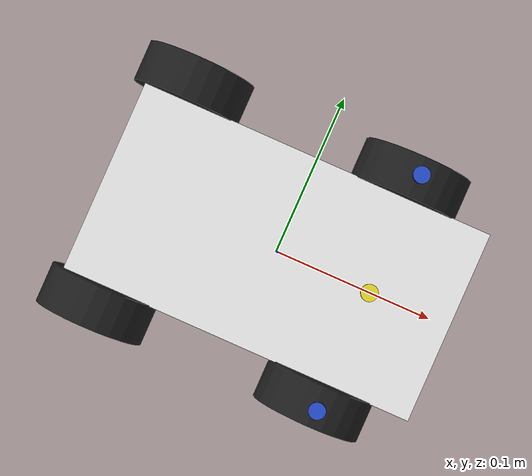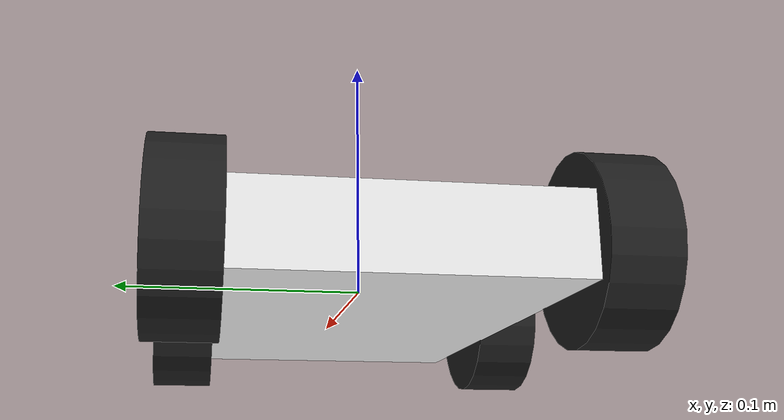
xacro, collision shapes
<?xml version="1.0"?>
<robot name="ackermann_bot" xmlns:xacro="http://wiki.ros.org/xacro">
  <!-- Include xacro for inertials, materials and wheels -->
  <xacro:include filename="$(find av_atras)/urdf/wheel_edit.xacro"/>

  <xacro:property name="M_PI" value="3.1415926535897931" />
  <xacro:arg name="lidar_visual"    default="true"/>
  <xacro:arg name="imu_visual"    default="true"/>

  <!-- Gazebo plugins -->
  <gazebo>
    <!-- Load ros_control plugin using the steer_bot_hardware_gazebo
    implementation of the hardware_interface::RobotHW -->
    <plugin name="gazebo_ros_control" filename="libgazebo_ros_control.so">
      <robotSimType>steer_bot_hardware_gazebo/SteerBotHardwareGazebo</robotSimType>
      <legacyModeNS>false</legacyModeNS>
    </plugin>
  </gazebo>

  <!-- Math constants -->
  <xacro:property name="deg_to_rad" value="0.01745329251994329577"/>

  <!-- Robot base dimensions -->
  <xacro:property name="base_length" value="0.222" />
  <xacro:property name="base_width" value="0.12" />
  <xacro:property name="base_height" value="0.03" />
  <xacro:property name="base_mass" value="3" />

  <!-- Wheel link dimensions -->
  <xacro:property name="wheel_radius" value="0.034" />
  <xacro:property name="wheel_thickness" value="0.025" />
  <xacro:property name="wheel_mass" value="0.25" />

  <!-- Steering link dimensions -->
  <xacro:property name="steer_radius" value="0.005" />
  <xacro:property name="steer_thickness" value="0.002" />
  <xacro:property name="steer_mass" value="0.01" />

  <!-- Axle positions -->
  <xacro:property name="axle_offset" value="0.012" />
  <xacro:property name="steer_offset" value="0.02" />
  <xacro:property name="front_center_offset" value="0.055" />
  <xacro:property name="rear_center_offset" value="0.025" />

  <link name="base_footprint"/>
  <joint name="base_joint" type="fixed">
    <parent link="base_footprint"/>
    <child link="base_link" />
    <origin xyz="0 0 0.0" rpy="0 0 0"/>
  </joint>

  <!-- Base link -->
  <link name="base_link">
    <visual>
      <origin xyz="0 0 0" rpy="0 0 0"/>
      <geometry>
        <box size="${base_length} ${base_width} ${base_height}"/>
      </geometry>
      <material name="white" />
    </visual>
    <collision>
      <origin xyz="0 0 0" rpy="0 0 0"/>
      <geometry>
        <box size="${base_length} ${base_width} ${base_height}"/>
      </geometry>
    </collision>
    <xacro:solid_cuboid_inertial
        rpy="0 0 0" xyz="0 0 0"
        mass="${base_mass}"
        x="${base_length}" y="${base_width}" z="${base_height}" />
  </link>

  <!-- Front steer and rear wheel joints required for ackermann_steering_controller -->
  <xacro:front_steer
    name="front"
    parent="base"
    steer_radius="${steer_radius}"
    steer_thickness="${steer_thickness}"
    steer_mass="${steer_mass}"
    base_length="${base_length}"
    base_width="${base_width}"
    axle_offset="${axle_offset}"
    steer_height="${wheel_radius+steer_offset}"
    front_center_offset= "${front_center_offset}">
  </xacro:front_steer>

  <xacro:rear_wheel
    name="rear"
    parent="base"
    wheel_radius="${wheel_radius/4}"
    wheel_thickness="${wheel_thickness/2}"
    wheel_mass="${wheel_mass/32}">
    <origin xyz="${-base_length/2+rear_center_offset} 0 0" rpy="${-90 * deg_to_rad} 0 0"/>
  </xacro:rear_wheel>

  <!-- Steerable front wheels -->
  <xacro:front_wheel_lr
    name="front_right"
    parent="base"
    reflect="-1"
    wheel_radius="${wheel_radius}"
    wheel_thickness="${wheel_thickness}"
    wheel_mass="${wheel_mass}"
    steer_radius="${steer_radius}"
    steer_thickness="${steer_thickness}"
    steer_mass="${steer_mass}"
    base_length="${base_length}"
    base_width="${base_width}"
    axle_offset="${axle_offset}"
    front_center_offset= "${front_center_offset}"
    steer_height="${wheel_radius+steer_offset}">
  </xacro:front_wheel_lr>
  <xacro:front_wheel_lr
    name="front_left"
    parent="base"
    reflect="1"
    wheel_radius="${wheel_radius}"
    wheel_thickness="${wheel_thickness}"
    wheel_mass="${wheel_mass}"
    steer_radius="${steer_radius}"
    steer_thickness="${steer_thickness}"
    steer_mass="${steer_mass}"
    base_length="${base_length}"
    base_width="${base_width}"
    axle_offset="${axle_offset}"
    front_center_offset= "${front_center_offset}"
    steer_height="${wheel_radius+steer_offset}">
  </xacro:front_wheel_lr>

  <!-- Rear wheels -->
  <xacro:rear_wheel_lr
    name="rear_right"
    parent="base"
    wheel_radius="${wheel_radius}"
    wheel_thickness="${wheel_thickness}"
    wheel_mass="${wheel_mass}">
    <origin xyz="${-base_length/2+rear_center_offset} ${-base_width/2-axle_offset} 0" rpy="${-90 * deg_to_rad} 0 0"/>
  </xacro:rear_wheel_lr>
  <xacro:rear_wheel_lr
    name="rear_left"
    parent="base"
    wheel_radius="${wheel_radius}"
    wheel_thickness="${wheel_thickness}"
    wheel_mass="${wheel_mass}">
    <origin xyz="${-base_length/2+rear_center_offset} ${+base_width/2+axle_offset} 0" rpy="${-90 * deg_to_rad} 0 0"/>
  </xacro:rear_wheel_lr>

  <!-- Colour -->
  <gazebo reference="base_link">
    <material>Gazebo/White</material>
  </gazebo>

  <joint name="lidar_joint" type="fixed">
    <parent link="base_link"/>
    <child link="lidar_link"/>
    <origin xyz="0 0 0.1" rpy="0 0 0"/>
  </joint>

  <link name="lidar_link">
    <visual>
      <origin xyz="0 0 0" rpy="0 0 0"/>
      <geometry>
        <mesh filename="package://av_atras/urdf/meshes/lidar.STL" />
      </geometry>
      <material
        name="">
        <color
          rgba="0.79216 0.81961 0.93333 1" />
      </material>
    </visual>
  </link>
  <gazebo reference="lidar_link">
    <material>Gazebo/FlatBlack</material>
    <sensor type="ray" name="lds_lfcd_sensor">
      <pose>0 0 0 0 0 1.57079631</pose>
      <visualize>$(arg lidar_visual)</visualize>
      <update_rate>1500</update_rate>
      <ray>
        <scan>
          <horizontal>
            <samples>270</samples>
            <resolution>1</resolution>
            <min_angle>-2.1</min_angle>
            <max_angle>2.1</max_angle>
          </horizontal>
        </scan>
        <range>
          <min>0.05</min>
          <max>10.0</max>
          <resolution>0.009</resolution>
        </range>
        <noise>
          <type>gaussian</type>
          <mean>0.0</mean>
          <stddev>0.01</stddev>
        </noise>
      </ray>
      <plugin name="gazebo_ros_lds_lfcd_controller" filename="libgazebo_ros_laser.so">
        <topicName>/scan</topicName>
        <frameName>lidar_link</frameName>
      </plugin>
    </sensor>
  </gazebo>

  <!-- imu -->
  <joint name="imu_joint" type="fixed">
    <parent link="base_link"/>
    <child link="imu_link"/>
    <origin xyz="0.0 0 0.015" rpy="0 0 ${-M_PI*0.5}"/>
  </joint>

  <link name="imu_link"/>

  <gazebo reference="imu_link">
    <sensor type="imu" name="imu">
      <always_on>true</always_on>
      <update_rate>100</update_rate>
      <visualize>$(arg imu_visual)</visualize>
    </sensor>
    <material>Gazebo/FlatBlack</material>
  </gazebo>

  <gazebo>
    <plugin name="imu_plugin" filename="libgazebo_ros_imu.so">
      <alwaysOn>true</alwaysOn>
      <bodyName>imu_link</bodyName>
      <topicName>/imu</topicName>
      <serviceName>/imu_service</serviceName>
      <gaussianNoise>0.0</gaussianNoise>
      <updateRate>100.0</updateRate>
      <imu>
        <noise>
          <type>gaussian</type>
          <rate>
            <mean>0.0</mean>
            <stddev>2e-4</stddev>
            <bias_mean>0.0000075</bias_mean>
            <bias_stddev>0.0000008</bias_stddev>
          </rate>
          <accel>
            <mean>0.0</mean>
            <stddev>1.7e-2</stddev>
            <bias_mean>0.1</bias_mean>
            <bias_stddev>0.001</bias_stddev>
          </accel>
        </noise>
      </imu>
    </plugin>
  </gazebo>

</robot>

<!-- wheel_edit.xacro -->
<robot name="wheel" xmlns:xacro="http://wiki.ros.org/xacro">
  <!-- Include xacro for materials and inertials -->
  <xacro:include filename="$(find av_atras)/urdf/materials.xacro"/>
  <xacro:include filename="$(find av_atras)/urdf/inertials.xacro"/>

  <!-- Properties -->
  <xacro:property name="steer_effort" value="10.0"/>
  <xacro:property name="steer_velocity" value="5.0"/>
  <xacro:property name="steer_limit_deg" value="45.0"/>

  <!-- Bicycle model front steering link (required for steer_drive_controller) -->
  <xacro:macro name="front_steer"
    params="
      name
      parent
      steer_radius
      steer_thickness
      steer_mass
      base_length
      base_width
      axle_offset
      steer_height
      front_center_offset">

    <joint name="${name}_steer_joint" type="revolute">
      <parent link="${parent}_link"/>
      <child link="${name}_steer_link"/>
      <origin xyz="${base_length/2-front_center_offset} 0 ${steer_height}" rpy="0 0 0"/>
      <axis xyz="0 0 1"/>
      <limit effort="${steer_effort}"
             lower="${-180.0 * deg_to_rad}" upper="${180.0 * deg_to_rad}"
             velocity="${steer_velocity}"/>
    </joint>

    <link name="${name}_steer_link">
      <visual>
        <origin xyz="0 0 0" rpy="0 0 0"/>
        <geometry>
          <cylinder radius="${steer_radius}" length="${steer_thickness}"/>
        </geometry>
        <material name="yellow" />

      </visual>
      <collision>
        <origin xyz="0 0 0" rpy="0 0 0"/>
        <geometry>
          <cylinder radius="${steer_radius}" length="${steer_thickness}"/>
        </geometry>

      </collision>
      <xacro:solid_cylinder_inertial
          rpy="0 0 0" xyz="0 0 0"
          mass="${steer_mass}"
          radius="${steer_radius}" length="${steer_thickness}" />
    </link>

    <transmission name="${name}_steer_joint_trans">
      <type>transmission_interface/SimpleTransmission</type>
      <actuator name="${name}_steer_joint_motor">
        <mechanicalReduction>1</mechanicalReduction>
        <hardwareInterface>hardware_interface/PositionJointInterface</hardwareInterface>
      </actuator>
      <joint name="${name}_steer_joint">
        <hardwareInterface>hardware_interface/PositionJointInterface</hardwareInterface>
      </joint>
    </transmission>

    <gazebo reference="${name}_steer_link">
      <material>Gazebo/Yellow</material>
    </gazebo>
  </xacro:macro>

  <!-- Car steering model front (steerable) wheel links (left/right) -->
  <xacro:macro name="front_wheel_lr"
    params="
      name
      parent
      reflect
      wheel_radius
      wheel_thickness
      wheel_mass
      steer_radius
      steer_thickness
      steer_mass
      base_length
      base_width
      front_center_offset
      axle_offset
      steer_height">
    <joint name="${name}_steer_joint" type="revolute">
      <parent link="${parent}_link"/>
      <child link="${name}_steer_link"/>
      <origin xyz="${base_length/2-front_center_offset} ${reflect*(base_width/2+axle_offset)} ${steer_height}" rpy="0 0 0"/>
      <axis xyz="0 0 1"/>
      <limit effort="${steer_effort}"
             lower="${steer_limit_deg * deg_to_rad * -1.0}" upper="${steer_limit_deg * deg_to_rad}"
             velocity="${steer_velocity}"/>
    </joint>

    <link name="${name}_steer_link">
      <visual>
        <origin xyz="0 0 0" rpy="0 0 0"/>
        <geometry>
          <cylinder radius="${steer_radius}" length="${steer_thickness}"/>
        </geometry>
        <material name="blue" />

      </visual>
      <collision>
        <origin xyz="0 0 0" rpy="0 0 0"/>
        <geometry>
          <cylinder radius="${steer_radius}" length="${steer_thickness}"/>
        </geometry>

      </collision>
      <xacro:solid_cylinder_inertial
          rpy="0 0 0" xyz="0 0 0"
          mass="${steer_mass}"
          radius="${steer_radius}" length="${steer_thickness}" />
    </link>

    <link name="${name}_wheel_link">
      <visual>
        <origin xyz="0 0 0" rpy="0 0 0"/>
        <geometry>
          <cylinder radius="${wheel_radius}" length="${wheel_thickness}"/>
        </geometry>
        <material name="black" />

      </visual>
      <collision>
        <origin xyz="0 0 0" rpy="0 0 0"/>
        <geometry>
          <cylinder radius="${wheel_radius}" length="${wheel_thickness}"/>
        </geometry>

      </collision>
      <xacro:solid_cylinder_inertial
          rpy="0 0 0" xyz="0 0 0"
          mass="${wheel_mass}"
          radius="${wheel_radius}" length="${wheel_thickness}" />
    </link>

    <joint name="${name}_wheel_joint" type="continuous">
      <parent link="${name}_steer_link"/>
      <child link="${name}_wheel_link"/>
      <origin xyz="0 0 ${-steer_height}" rpy="${-90 * deg_to_rad} 0 0"/>
      <axis xyz="0 0 1"/>
    </joint>

    <transmission name="${name}_steer_joint_trans">
      <type>transmission_interface/SimpleTransmission</type>
      <actuator name="${name}_steer_joint_motor">
        <mechanicalReduction>1</mechanicalReduction>
        <hardwareInterface>hardware_interface/PositionJointInterface</hardwareInterface>
      </actuator>
      <joint name="${name}_steer_joint">
        <hardwareInterface>hardware_interface/PositionJointInterface</hardwareInterface>
      </joint>
    </transmission>

    <transmission name="${name}_wheel_joint_trans">
      <type>transmission_interface/SimpleTransmission</type>
      <actuator name="${name}_wheel_joint_motor">
        <mechanicalReduction>1</mechanicalReduction>
        <hardwareInterface>hardware_interface/VelocityJointInterface</hardwareInterface>
      </actuator>
      <joint name="${name}_wheel_joint">
        <hardwareInterface>hardware_interface/VelocityJointInterface</hardwareInterface>
      </joint>
    </transmission>

    <gazebo reference="${name}_steer_link">
      <material>Gazebo/Blue</material>
    </gazebo>

    <gazebo reference="${name}_wheel_link">
      <material>Gazebo/Black</material>
      <mu1 value="2.0"/>
      <mu2 value="2.0"/>
    </gazebo>
  </xacro:macro>

  <!-- Bicycle model rear wheel link (required for steer_drive_controller) -->
  <xacro:macro name="rear_wheel"
    params="
      name
      parent
      wheel_radius
      wheel_thickness
      wheel_mass
      *origin">
    <link name="${name}_wheel_link">
      <visual>
        <origin xyz="0 0 0" rpy="0 0 0"/>
        <geometry>
          <cylinder radius="${wheel_radius}" length="${wheel_thickness}"/>
        </geometry>
        <material name="yellow" />

      </visual>
      <collision>
        <origin xyz="0 0 0" rpy="0 0 0"/>
        <geometry>
          <cylinder radius="${wheel_radius}" length="${wheel_thickness}"/>
        </geometry>

      </collision>
      <xacro:solid_cylinder_inertial
          rpy="0 0 0" xyz="0 0 0"
          mass="${wheel_mass}"
          radius="${wheel_radius}" length="${wheel_thickness}" />
    </link>

    <joint name="${name}_wheel_joint" type="continuous">
      <parent link="${parent}_link"/>
      <child link="${name}_wheel_link"/>
      <xacro:insert_block name="origin"/>
      <axis xyz="0 0 1"/>
    </joint>

    <transmission name="${name}_wheel_joint_trans">
      <type>transmission_interface/SimpleTransmission</type>
      <actuator name="${name}_wheel_joint_motor">
        <mechanicalReduction>1</mechanicalReduction>
        <hardwareInterface>hardware_interface/VelocityJointInterface</hardwareInterface>
      </actuator>
      <joint name="${name}_wheel_joint">
        <hardwareInterface>hardware_interface/VelocityJointInterface</hardwareInterface>
      </joint>
    </transmission>

    <gazebo reference="${name}_wheel_link">
      <material>Gazebo/Yellow</material>
    </gazebo>
  </xacro:macro>

  <!-- Car steering model rear wheel links (left/right) -->
  <xacro:macro name="rear_wheel_lr"
    params="
      name
      parent
      wheel_radius
      wheel_thickness
      wheel_mass
      *origin">
    <link name="${name}_wheel_link">
      <visual>
        <origin xyz="0 0 0" rpy="0 0 0"/>
        <geometry>
          <cylinder radius="${wheel_radius}" length="${wheel_thickness}"/>
        </geometry>
        <material name="black" />

      </visual>
      <collision>
        <origin xyz="0 0 0" rpy="0 0 0"/>
        <geometry>
          <cylinder radius="${wheel_radius}" length="${wheel_thickness}"/>
        </geometry>

      </collision>
      <xacro:solid_cylinder_inertial
          rpy="0 0 0" xyz="0 0 0"
          mass="${wheel_mass}"
          radius="${wheel_radius}" length="${wheel_thickness}" />
    </link>

    <joint name="${name}_wheel_joint" type="continuous">
      <parent link="${parent}_link"/>
      <child link="${name}_wheel_link"/>
      <xacro:insert_block name="origin"/>
      <axis xyz="0 0 1"/>
    </joint>

    <transmission name="${name}_wheel_joint_trans">
      <type>transmission_interface/SimpleTransmission</type>
      <actuator name="${name}_wheel_joint_motor">
        <mechanicalReduction>1</mechanicalReduction>
        <hardwareInterface>hardware_interface/VelocityJointInterface</hardwareInterface>
      </actuator>
      <joint name="${name}_wheel_joint">
        <hardwareInterface>hardware_interface/VelocityJointInterface</hardwareInterface>
      </joint>
    </transmission>

    <gazebo reference="${name}_wheel_link">
      <material>Gazebo/Black</material>
      <mu1 value="2.0"/>
      <mu2 value="2.0"/>
    </gazebo>
  </xacro:macro>
</robot>
